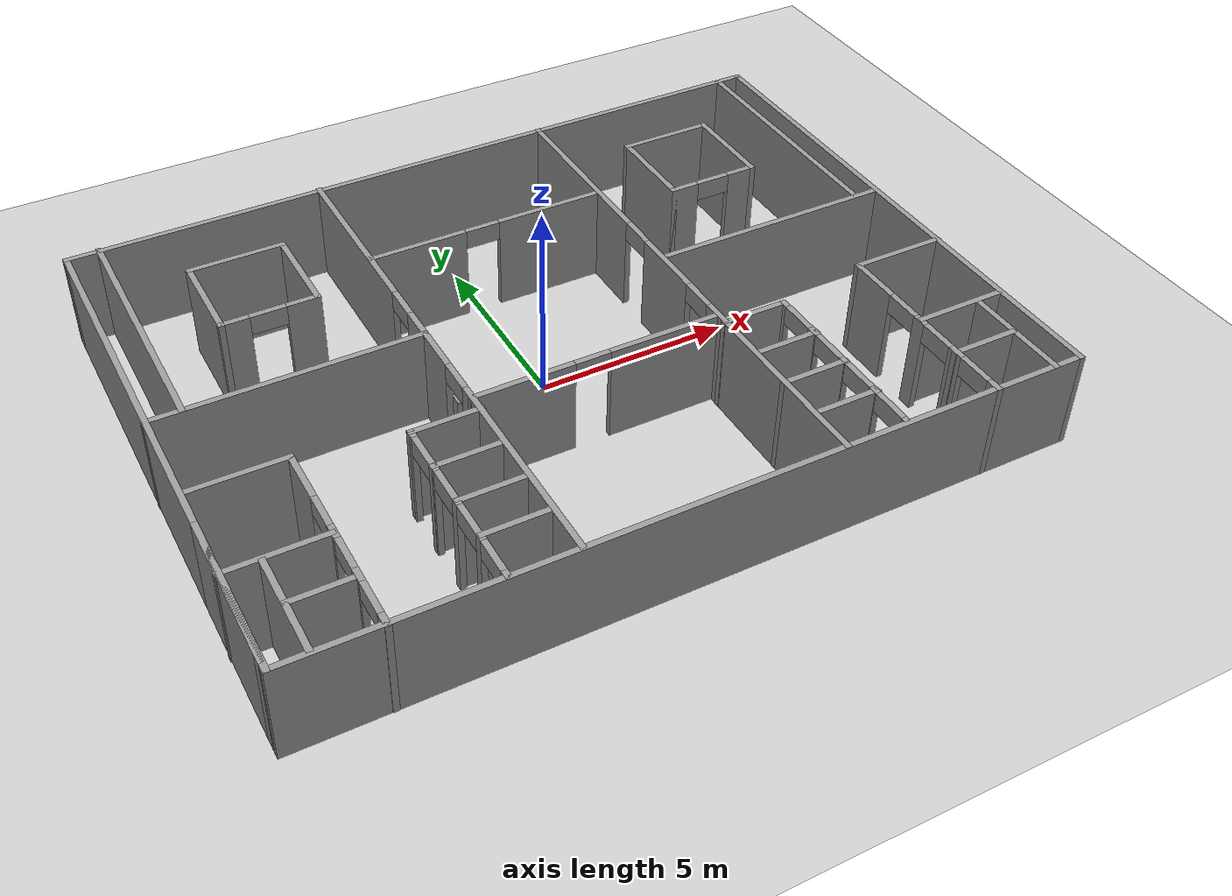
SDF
<sdf version="1.6">
 <world name="default">
  <light name="sun" type="directional">
   <pose>0 0 10 0 -0 0</pose>
   <diffuse>0.8 0.8 0.8 1</diffuse>
   <specular>0.1 0.1 0.1 1</specular>
   <attenuation>
    <range>1000</range>
    <constant>0.9</constant>
    <linear>0.01</linear>
    <quadratic>0.001</quadratic>
   </attenuation>
   <direction>-0.5 0.5 -1</direction>
  </light>
  <model name="ground_plane">
   <static>1</static>
   <link name="link">
    <collision name="collision">
     <geometry><plane><normal>0 0 1</normal><size>100 100</size></plane></geometry>
     <surface><friction><ode><mu>100</mu><mu2>50</mu2></ode></friction></surface>
    </collision>
    <visual name="visual">
     <cast_shadows>0</cast_shadows>
     <geometry><plane><normal>0 0 1</normal><size>100 100</size></plane></geometry>
     <material>
      <script><uri>file://media/materials/scripts/gazebo.material</uri><name>Gazebo/Grey</name></script>
     </material>
    </visual>
   </link>
  </model>
  <gravity>0 0 -9.8</gravity>
  <magnetic_field>6e-06 2.3e-05 -4.2e-05</magnetic_field>
  <atmosphere type="adiabatic"/>
  <physics name="default_physics" default="0" type="ode">
   <max_step_size>0.001</max_step_size>
   <real_time_factor>1</real_time_factor>
   <real_time_update_rate>1000</real_time_update_rate>
  </physics>
  <scene><ambient>0.4 0.4 0.4 1</ambient><background>0.7 0.7 0.7 1</background><shadows>1</shadows></scene>
  <spherical_coordinates>
   <surface_model>EARTH_WGS84</surface_model>
   <latitude_deg>0</latitude_deg>
   <longitude_deg>0</longitude_deg>
   <elevation>0</elevation>
   <heading_deg>0</heading_deg>
  </spherical_coordinates>
  <model name="Mezzanino">
   <pose>0.21214 -0.136261 0 0 -0 0</pose>
   <link name="Wall_103">
    <pose>3.22743 0.000523 0 0 0 -1.5708</pose>
    <visual name="Wall_103_Visual_0">
     <pose>-4.63496 0 1.25 0 -0 0</pose>
     <geometry><box><size>4.98009 0.15 2.5</size></box></geometry>
     <material>
      <script><uri>file://media/materials/scripts/gazebo.material</uri><name>Gazebo/Grey</name></script>
      <ambient>1 1 1 1</ambient>
     </material>
    </visual>
    <collision name="Wall_103_Collision_0">
     <geometry><box><size>4.98009 0.15 2.5</size></box></geometry>
     <pose>-4.63496 0 1.25 0 -0 0</pose>
    </collision>
    <visual name="Wall_103_Visual_1">
     <pose>-0.265455 0 1.25 0 -0 0</pose>
     <geometry><box><size>1.95891 0.15 2.5</size></box></geometry>
     <material>
      <script><uri>file://media/materials/scripts/gazebo.material</uri><name>Gazebo/Grey</name></script>
      <ambient>1 1 1 1</ambient>
     </material>
    </visual>
    <collision name="Wall_103_Collision_1">
     <geometry><box><size>1.95891 0.15 2.5</size></box></geometry>
     <pose>-0.265455 0 1.25 0 -0 0</pose>
    </collision>
    <visual name="Wall_103_Visual_2">
     <pose>4.3695 0 1.25 0 -0 0</pose>
     <geometry><box><size>5.511 0.15 2.5</size></box></geometry>
     <material>
      <script><uri>file://media/materials/scripts/gazebo.material</uri><name>Gazebo/Grey</name></script>
      <ambient>1 1 1 1</ambient>
     </material>
    </visual>
    <collision name="Wall_103_Collision_2">
     <geometry><box><size>5.511 0.15 2.5</size></box></geometry>
     <pose>4.3695 0 1.25 0 -0 0</pose>
    </collision>
    <visual name="Wall_103_Visual_3">
     <pose>-1.69491 0 2.25 0 -0 0</pose>
     <geometry><box><size>0.9 0.15 0.5</size></box></geometry>
     <material>
      <script><uri>file://media/materials/scripts/gazebo.material</uri><name>Gazebo/Grey</name></script>
      <ambient>1 1 1 1</ambient>
     </material>
    </visual>
    <collision name="Wall_103_Collision_3">
     <geometry><box><size>0.9 0.15 0.5</size></box></geometry>
     <pose>-1.69491 0 2.25 0 -0 0</pose>
    </collision>
    <visual name="Wall_103_Visual_4">
     <pose>1.164 0 2.25 0 -0 0</pose>
     <geometry><box><size>0.9 0.15 0.5</size></box></geometry>
     <material>
      <script><uri>file://media/materials/scripts/gazebo.material</uri><name>Gazebo/Grey</name></script>
      <ambient>1 1 1 1</ambient>
     </material>
    </visual>
    <collision name="Wall_103_Collision_4">
     <geometry><box><size>0.9 0.15 0.5</size></box></geometry>
     <pose>1.164 0 2.25 0 -0 0</pose>
    </collision>
   </link>
   <link name="Wall_105">
    <pose>-3.04356 0.031113 0 0 0 -1.5708</pose>
    <visual name="Wall_105_Visual_0">
     <pose>-4.65272 0 1.25 0 -0 0</pose>
     <geometry><box><size>4.94455 0.15 2.5</size></box></geometry>
     <material>
      <script><uri>file://media/materials/scripts/gazebo.material</uri><name>Gazebo/Grey</name></script>
      <ambient>1 1 1 1</ambient>
     </material>
    </visual>
    <collision name="Wall_105_Collision_0">
     <geometry><box><size>4.94455 0.15 2.5</size></box></geometry>
     <pose>-4.65272 0 1.25 0 -0 0</pose>
    </collision>
    <visual name="Wall_105_Visual_1">
     <pose>-0.242635 0 1.25 0 -0 0</pose>
     <geometry><box><size>2.07563 0.15 2.5</size></box></geometry>
     <material>
      <script><uri>file://media/materials/scripts/gazebo.material</uri><name>Gazebo/Grey</name></script>
      <ambient>1 1 1 1</ambient>
     </material>
    </visual>
    <collision name="Wall_105_Collision_1">
     <geometry><box><size>2.07563 0.15 2.5</size></box></geometry>
     <pose>-0.242635 0 1.25 0 -0 0</pose>
    </collision>
    <visual name="Wall_105_Visual_2">
     <pose>4.41009 0 1.25 0 -0 0</pose>
     <geometry><box><size>5.42982 0.15 2.5</size></box></geometry>
     <material>
      <script><uri>file://media/materials/scripts/gazebo.material</uri><name>Gazebo/Grey</name></script>
      <ambient>1 1 1 1</ambient>
     </material>
    </visual>
    <collision name="Wall_105_Collision_2">
     <geometry><box><size>5.42982 0.15 2.5</size></box></geometry>
     <pose>4.41009 0 1.25 0 -0 0</pose>
    </collision>
    <visual name="Wall_105_Visual_3">
     <pose>-1.73045 0 2.25 0 -0 0</pose>
     <geometry><box><size>0.9 0.15 0.5</size></box></geometry>
     <material>
      <script><uri>file://media/materials/scripts/gazebo.material</uri><name>Gazebo/Grey</name></script>
      <ambient>1 1 1 1</ambient>
     </material>
    </visual>
    <collision name="Wall_105_Collision_3">
     <geometry><box><size>0.9 0.15 0.5</size></box></geometry>
     <pose>-1.73045 0 2.25 0 -0 0</pose>
    </collision>
    <visual name="Wall_105_Visual_4">
     <pose>1.24518 0 2.25 0 -0 0</pose>
     <geometry><box><size>0.9 0.15 0.5</size></box></geometry>
     <material>
      <script><uri>file://media/materials/scripts/gazebo.material</uri><name>Gazebo/Grey</name></script>
      <ambient>1 1 1 1</ambient>
     </material>
    </visual>
    <collision name="Wall_105_Collision_4">
     <geometry><box><size>0.9 0.15 0.5</size></box></geometry>
     <pose>1.24518 0 2.25 0 -0 0</pose>
    </collision>
   </link>
   <link name="Wall_107">
    <pose>0.07436 -2.03402 0 0 -0 0</pose>
    <visual name="Wall_107_Visual_0">
     <pose>-1.9063 0 1.25 0 -0 0</pose>
     <geometry><box><size>2.5874 0.15 2.5</size></box></geometry>
     <material>
      <script><uri>file://media/materials/scripts/gazebo.material</uri><name>Gazebo/Grey</name></script>
      <ambient>1 1 1 1</ambient>
     </material>
    </visual>
    <collision name="Wall_107_Collision_0">
     <geometry><box><size>2.5874 0.15 2.5</size></box></geometry>
     <pose>-1.9063 0 1.25 0 -0 0</pose>
    </collision>
    <visual name="Wall_107_Visual_1">
     <pose>1.7437 0 1.25 0 -0 0</pose>
     <geometry><box><size>2.9126 0.15 2.5</size></box></geometry>
     <material>
      <script><uri>file://media/materials/scripts/gazebo.material</uri><name>Gazebo/Grey</name></script>
      <ambient>1 1 1 1</ambient>
     </material>
    </visual>
    <collision name="Wall_107_Collision_1">
     <geometry><box><size>2.9126 0.15 2.5</size></box></geometry>
     <pose>1.7437 0 1.25 0 -0 0</pose>
    </collision>
    <visual name="Wall_107_Visual_2">
     <pose>-0.1626 0 2.25 0 -0 0</pose>
     <geometry><box><size>0.9 0.15 0.5</size></box></geometry>
     <material>
      <script><uri>file://media/materials/scripts/gazebo.material</uri><name>Gazebo/Grey</name></script>
      <ambient>1 1 1 1</ambient>
     </material>
    </visual>
    <collision name="Wall_107_Collision_2">
     <geometry><box><size>0.9 0.15 0.5</size></box></geometry>
     <pose>-0.1626 0 2.25 0 -0 0</pose>
    </collision>
   </link>
   <link name="Wall_109">
    <pose>6.13871 2.88569 0 0 -0 0</pose>
    <visual name="Wall_109_Visual_0">
     <pose>-0.862212 0 1.25 0 -0 0</pose>
     <geometry><box><size>0.775575 0.15 2.5</size></box></geometry>
     <material>
      <script><uri>file://media/materials/scripts/gazebo.material</uri><name>Gazebo/Grey</name></script>
      <ambient>1 1 1 1</ambient>
     </material>
    </visual>
    <collision name="Wall_109_Collision_0">
     <geometry><box><size>0.775575 0.15 2.5</size></box></geometry>
     <pose>-0.862212 0 1.25 0 -0 0</pose>
    </collision>
    <visual name="Wall_109_Visual_1">
     <pose>0.837788 0 1.25 0 -0 0</pose>
     <geometry><box><size>0.824425 0.15 2.5</size></box></geometry>
     <material>
      <script><uri>file://media/materials/scripts/gazebo.material</uri><name>Gazebo/Grey</name></script>
      <ambient>1 1 1 1</ambient>
     </material>
    </visual>
    <collision name="Wall_109_Collision_1">
     <geometry><box><size>0.824425 0.15 2.5</size></box></geometry>
     <pose>0.837788 0 1.25 0 -0 0</pose>
    </collision>
    <visual name="Wall_109_Visual_2">
     <pose>-0.024425 0 2.25 0 -0 0</pose>
     <geometry><box><size>0.9 0.15 0.5</size></box></geometry>
     <material>
      <script><uri>file://media/materials/scripts/gazebo.material</uri><name>Gazebo/Grey</name></script>
      <ambient>1 1 1 1</ambient>
     </material>
    </visual>
    <collision name="Wall_109_Collision_2">
     <geometry><box><size>0.9 0.15 0.5</size></box></geometry>
     <pose>-0.024425 0 2.25 0 -0 0</pose>
    </collision>
   </link>
   <link name="Wall_11">
    <collision name="Wall_11_Collision">
     <geometry><box><size>14.0004 0.15 2.5</size></box></geometry>
     <pose>0 0 1.25 0 -0 0</pose>
    </collision>
    <visual name="Wall_11_Visual">
     <pose>0 0 1.25 0 -0 0</pose>
     <geometry><box><size>14.0004 0.15 2.5</size></box></geometry>
     <material>
      <script><uri>file://media/materials/scripts/gazebo.material</uri><name>Gazebo/Grey</name></script>
      <ambient>1 1 1 1</ambient>
     </material>
    </visual>
    <pose>-9.54461 0.110793 0 0 0 -1.57099</pose>
   </link>
   <link name="Wall_110">
    <collision name="Wall_110_Collision">
     <geometry><box><size>2.5 0.15 2.5</size></box></geometry>
     <pose>0 0 1.25 0 -0 0</pose>
    </collision>
    <visual name="Wall_110_Visual">
     <pose>0 0 1.25 0 -0 0</pose>
     <geometry><box><size>2.5 0.15 2.5</size></box></geometry>
     <material>
      <script><uri>file://media/materials/scripts/gazebo.material</uri><name>Gazebo/Grey</name></script>
      <ambient>1 1 1 1</ambient>
     </material>
    </visual>
    <pose>7.31371 4.06069 0 0 -0 1.5708</pose>
   </link>
   <link name="Wall_111">
    <collision name="Wall_111_Collision">
     <geometry><box><size>2.5 0.15 2.5</size></box></geometry>
     <pose>0 0 1.25 0 -0 0</pose>
    </collision>
    <visual name="Wall_111_Visual">
     <pose>0 0 1.25 0 -0 0</pose>
     <geometry><box><size>2.5 0.15 2.5</size></box></geometry>
     <material>
      <script><uri>file://media/materials/scripts/gazebo.material</uri><name>Gazebo/Grey</name></script>
      <ambient>1 1 1 1</ambient>
     </material>
    </visual>
    <pose>6.13871 5.23569 0 0 -0 3.14159</pose>
   </link>
   <link name="Wall_112">
    <collision name="Wall_112_Collision">
     <geometry><box><size>2.5 0.15 2.5</size></box></geometry>
     <pose>0 0 1.25 0 -0 0</pose>
    </collision>
    <visual name="Wall_112_Visual">
     <pose>0 0 1.25 0 -0 0</pose>
     <geometry><box><size>2.5 0.15 2.5</size></box></geometry>
     <material>
      <script><uri>file://media/materials/scripts/gazebo.material</uri><name>Gazebo/Grey</name></script>
      <ambient>1 1 1 1</ambient>
     </material>
    </visual>
    <pose>4.96371 4.06069 0 0 0 -1.5708</pose>
   </link>
   <link name="Wall_12">
    <collision name="Wall_12_Collision">
     <geometry><box><size>4 0.15 2.5</size></box></geometry>
     <pose>0 0 1.25 0 -0 0</pose>
    </collision>
    <visual name="Wall_12_Visual">
     <pose>0 0 1.25 0 -0 0</pose>
     <geometry><box><size>4 0.15 2.5</size></box></geometry>
     <material>
      <script><uri>file://media/materials/scripts/gazebo.material</uri><name>Gazebo/Grey</name></script>
      <ambient>1 1 1 1</ambient>
     </material>
    </visual>
    <pose>-9.54592 -4.88941 0 0 -0 1.5708</pose>
   </link>
   <link name="Wall_121">
    <pose>0.10081 3.69241 0 0 -0 0</pose>
    <visual name="Wall_121_Visual_0">
     <pose>-1.91291 0 1.25 0 -0 0</pose>
     <geometry><box><size>2.57417 0.15 2.5</size></box></geometry>
     <material>
      <script><uri>file://media/materials/scripts/gazebo.material</uri><name>Gazebo/Grey</name></script>
      <ambient>1 1 1 1</ambient>
     </material>
    </visual>
    <collision name="Wall_121_Collision_0">
     <geometry><box><size>2.57417 0.15 2.5</size></box></geometry>
     <pose>-1.91291 0 1.25 0 -0 0</pose>
    </collision>
    <visual name="Wall_121_Visual_1">
     <pose>1.73709 0 1.25 0 -0 0</pose>
     <geometry><box><size>2.92583 0.15 2.5</size></box></geometry>
     <material>
      <script><uri>file://media/materials/scripts/gazebo.material</uri><name>Gazebo/Grey</name></script>
      <ambient>1 1 1 1</ambient>
     </material>
    </visual>
    <collision name="Wall_121_Collision_1">
     <geometry><box><size>2.92583 0.15 2.5</size></box></geometry>
     <pose>1.73709 0 1.25 0 -0 0</pose>
    </collision>
    <visual name="Wall_121_Visual_2">
     <pose>-0.175825 0 2.25 0 -0 0</pose>
     <geometry><box><size>0.9 0.15 0.5</size></box></geometry>
     <material>
      <script><uri>file://media/materials/scripts/gazebo.material</uri><name>Gazebo/Grey</name></script>
      <ambient>1 1 1 1</ambient>
     </material>
    </visual>
    <collision name="Wall_121_Collision_2">
     <geometry><box><size>0.9 0.15 0.5</size></box></geometry>
     <pose>-0.175825 0 2.25 0 -0 0</pose>
    </collision>
   </link>
   <link name="Wall_123">
    <collision name="Wall_123_Collision">
     <geometry><box><size>6.65 0.15 2.5</size></box></geometry>
     <pose>0 0 1.25 0 -0 0</pose>
    </collision>
    <visual name="Wall_123_Visual">
     <pose>0 0 1.25 0 -0 0</pose>
     <geometry><box><size>6.65 0.15 2.5</size></box></geometry>
     <material>
      <script><uri>file://media/materials/scripts/gazebo.material</uri><name>Gazebo/Grey</name></script>
      <ambient>1 1 1 1</ambient>
     </material>
    </visual>
    <pose>-6.30731 0.465994 0 0 -0 0</pose>
   </link>
   <link name="Wall_127">
    <collision name="Wall_127_Collision">
     <geometry><box><size>2.5 0.15 2.5</size></box></geometry>
     <pose>0 0 1.25 0 -0 0</pose>
    </collision>
    <visual name="Wall_127_Visual">
     <pose>0 0 1.25 0 -0 0</pose>
     <geometry><box><size>2.5 0.15 2.5</size></box></geometry>
     <material>
      <script><uri>file://media/materials/scripts/gazebo.material</uri><name>Gazebo/Grey</name></script>
      <ambient>1 1 1 1</ambient>
     </material>
    </visual>
    <pose>-8.35589 -1.98111 0 0 -0 0</pose>
   </link>
   <link name="Wall_128">
    <pose>-7.18089 -4.53111 0 0 0 -1.5708</pose>
    <visual name="Wall_128_Visual_0">
     <pose>-1.92643 0 1.25 0 -0 0</pose>
     <geometry><box><size>1.39715 0.15 2.5</size></box></geometry>
     <material>
      <script><uri>file://media/materials/scripts/gazebo.material</uri><name>Gazebo/Grey</name></script>
      <ambient>1 1 1 1</ambient>
     </material>
    </visual>
    <collision name="Wall_128_Collision_0">
     <geometry><box><size>1.39715 0.15 2.5</size></box></geometry>
     <pose>-1.92643 0 1.25 0 -0 0</pose>
    </collision>
    <visual name="Wall_128_Visual_1">
     <pose>-0.129825 0 1.25 0 -0 0</pose>
     <geometry><box><size>0.39605 0.15 2.5</size></box></geometry>
     <material>
      <script><uri>file://media/materials/scripts/gazebo.material</uri><name>Gazebo/Grey</name></script>
      <ambient>1 1 1 1</ambient>
     </material>
    </visual>
    <collision name="Wall_128_Collision_1">
     <geometry><box><size>0.39605 0.15 2.5</size></box></geometry>
     <pose>-0.129825 0 1.25 0 -0 0</pose>
    </collision>
    <visual name="Wall_128_Visual_2">
     <pose>1.15961 0 1.25 0 -0 0</pose>
     <geometry><box><size>0.382825 0.15 2.5</size></box></geometry>
     <material>
      <script><uri>file://media/materials/scripts/gazebo.material</uri><name>Gazebo/Grey</name></script>
      <ambient>1 1 1 1</ambient>
     </material>
    </visual>
    <collision name="Wall_128_Collision_2">
     <geometry><box><size>0.382825 0.15 2.5</size></box></geometry>
     <pose>1.15961 0 1.25 0 -0 0</pose>
    </collision>
    <visual name="Wall_128_Visual_3">
     <pose>2.43801 0 1.25 0 -0 0</pose>
     <geometry><box><size>0.373975 0.15 2.5</size></box></geometry>
     <material>
      <script><uri>file://media/materials/scripts/gazebo.material</uri><name>Gazebo/Grey</name></script>
      <ambient>1 1 1 1</ambient>
     </material>
    </visual>
    <collision name="Wall_128_Collision_3">
     <geometry><box><size>0.373975 0.15 2.5</size></box></geometry>
     <pose>2.43801 0 1.25 0 -0 0</pose>
    </collision>
    <visual name="Wall_128_Visual_4">
     <pose>-0.77785 0 2.25 0 -0 0</pose>
     <geometry><box><size>0.9 0.15 0.5</size></box></geometry>
     <material>
      <script><uri>file://media/materials/scripts/gazebo.material</uri><name>Gazebo/Grey</name></script>
      <ambient>1 1 1 1</ambient>
     </material>
    </visual>
    <collision name="Wall_128_Collision_4">
     <geometry><box><size>0.9 0.15 0.5</size></box></geometry>
     <pose>-0.77785 0 2.25 0 -0 0</pose>
    </collision>
    <visual name="Wall_128_Visual_5">
     <pose>0.5182 0 2.25 0 -0 0</pose>
     <geometry><box><size>0.9 0.15 0.5</size></box></geometry>
     <material>
      <script><uri>file://media/materials/scripts/gazebo.material</uri><name>Gazebo/Grey</name></script>
      <ambient>1 1 1 1</ambient>
     </material>
    </visual>
    <collision name="Wall_128_Collision_5">
     <geometry><box><size>0.9 0.15 0.5</size></box></geometry>
     <pose>0.5182 0 2.25 0 -0 0</pose>
    </collision>
    <visual name="Wall_128_Visual_6">
     <pose>1.80103 0 2.25 0 -0 0</pose>
     <geometry><box><size>0.9 0.15 0.5</size></box></geometry>
     <material>
      <script><uri>file://media/materials/scripts/gazebo.material</uri><name>Gazebo/Grey</name></script>
      <ambient>1 1 1 1</ambient>
     </material>
    </visual>
    <collision name="Wall_128_Collision_6">
     <geometry><box><size>0.9 0.15 0.5</size></box></geometry>
     <pose>1.80103 0 2.25 0 -0 0</pose>
    </collision>
   </link>
   <link name="Wall_130">
    <collision name="Wall_130_Collision">
     <geometry><box><size>2.5 0.15 2.5</size></box></geometry>
     <pose>0 0 1.25 0 -0 0</pose>
    </collision>
    <visual name="Wall_130_Visual">
     <pose>0 0 1.25 0 -0 0</pose>
     <geometry><box><size>2.5 0.15 2.5</size></box></geometry>
     <material>
      <script><uri>file://media/materials/scripts/gazebo.material</uri><name>Gazebo/Grey</name></script>
      <ambient>1 1 1 1</ambient>
     </material>
    </visual>
    <pose>-8.39556 -4.42774 0 0 -0 0</pose>
   </link>
   <link name="Wall_132">
    <collision name="Wall_132_Collision">
     <geometry><box><size>2.65 0.15 2.5</size></box></geometry>
     <pose>0 0 1.25 0 -0 0</pose>
    </collision>
    <visual name="Wall_132_Visual">
     <pose>0 0 1.25 0 -0 0</pose>
     <geometry><box><size>2.65 0.15 2.5</size></box></geometry>
     <material>
      <script><uri>file://media/materials/scripts/gazebo.material</uri><name>Gazebo/Grey</name></script>
      <ambient>1 1 1 1</ambient>
     </material>
    </visual>
    <pose>-8.68449 -5.73064 0 0 0 -1.5708</pose>
   </link>
   <link name="Wall_134">
    <collision name="Wall_134_Collision">
     <geometry><box><size>1.5 0.15 2.5</size></box></geometry>
     <pose>0 0 1.25 0 -0 0</pose>
    </collision>
    <visual name="Wall_134_Visual">
     <pose>0 0 1.25 0 -0 0</pose>
     <geometry><box><size>1.5 0.15 2.5</size></box></geometry>
     <material>
      <script><uri>file://media/materials/scripts/gazebo.material</uri><name>Gazebo/Grey</name></script>
      <ambient>1 1 1 1</ambient>
     </material>
    </visual>
    <pose>-7.99627 -5.72379 0 0 -0 0</pose>
   </link>
   <link name="Wall_136">
    <collision name="Wall_136_Collision">
     <geometry><box><size>1.8 0.15 2.5</size></box></geometry>
     <pose>0 0 1.25 0 -0 0</pose>
    </collision>
    <visual name="Wall_136_Visual">
     <pose>0 0 1.25 0 -0 0</pose>
     <geometry><box><size>1.8 0.15 2.5</size></box></geometry>
     <material>
      <script><uri>file://media/materials/scripts/gazebo.material</uri><name>Gazebo/Grey</name></script>
      <ambient>1 1 1 1</ambient>
     </material>
    </visual>
    <pose>-3.84919 -2.44399 0 0 -0 3.14159</pose>
   </link>
   <link name="Wall_137">
    <pose>-4.67419 -4.74399 0 0 0 -1.5708</pose>
    <visual name="Wall_137_Visual_0">
     <pose>-2.2451 0 1.25 0 -0 0</pose>
     <geometry><box><size>0.2598 0.15 2.5</size></box></geometry>
     <material>
      <script><uri>file://media/materials/scripts/gazebo.material</uri><name>Gazebo/Grey</name></script>
      <ambient>1 1 1 1</ambient>
     </material>
    </visual>
    <collision name="Wall_137_Collision_0">
     <geometry><box><size>0.2598 0.15 2.5</size></box></geometry>
     <pose>-2.2451 0 1.25 0 -0 0</pose>
    </collision>
    <visual name="Wall_137_Visual_1">
     <pose>-1.09652 0 1.25 0 -0 0</pose>
     <geometry><box><size>0.23735 0.15 2.5</size></box></geometry>
     <material>
      <script><uri>file://media/materials/scripts/gazebo.material</uri><name>Gazebo/Grey</name></script>
      <ambient>1 1 1 1</ambient>
     </material>
    </visual>
    <collision name="Wall_137_Collision_1">
     <geometry><box><size>0.23735 0.15 2.5</size></box></geometry>
     <pose>-1.09652 0 1.25 0 -0 0</pose>
    </collision>
    <visual name="Wall_137_Visual_2">
     <pose>0.0276 0 1.25 0 -0 0</pose>
     <geometry><box><size>0.2109 0.15 2.5</size></box></geometry>
     <material>
      <script><uri>file://media/materials/scripts/gazebo.material</uri><name>Gazebo/Grey</name></script>
      <ambient>1 1 1 1</ambient>
     </material>
    </visual>
    <collision name="Wall_137_Collision_2">
     <geometry><box><size>0.2109 0.15 2.5</size></box></geometry>
     <pose>0.0276 0 1.25 0 -0 0</pose>
    </collision>
    <visual name="Wall_137_Visual_3">
     <pose>1.13589 0 1.25 0 -0 0</pose>
     <geometry><box><size>0.205672 0.15 2.5</size></box></geometry>
     <material>
      <script><uri>file://media/materials/scripts/gazebo.material</uri><name>Gazebo/Grey</name></script>
      <ambient>1 1 1 1</ambient>
     </material>
    </visual>
    <collision name="Wall_137_Collision_3">
     <geometry><box><size>0.205672 0.15 2.5</size></box></geometry>
     <pose>1.13589 0 1.25 0 -0 0</pose>
    </collision>
    <visual name="Wall_137_Visual_4">
     <pose>2.25686 0 1.25 0 -0 0</pose>
     <geometry><box><size>0.236278 0.15 2.5</size></box></geometry>
     <material>
      <script><uri>file://media/materials/scripts/gazebo.material</uri><name>Gazebo/Grey</name></script>
      <ambient>1 1 1 1</ambient>
     </material>
    </visual>
    <collision name="Wall_137_Collision_4">
     <geometry><box><size>0.236278 0.15 2.5</size></box></geometry>
     <pose>2.25686 0 1.25 0 -0 0</pose>
    </collision>
    <visual name="Wall_137_Visual_5">
     <pose>-1.6652 0 2.25 0 -0 0</pose>
     <geometry><box><size>0.9 0.15 0.5</size></box></geometry>
     <material>
      <script><uri>file://media/materials/scripts/gazebo.material</uri><name>Gazebo/Grey</name></script>
      <ambient>1 1 1 1</ambient>
     </material>
    </visual>
    <collision name="Wall_137_Collision_5">
     <geometry><box><size>0.9 0.15 0.5</size></box></geometry>
     <pose>-1.6652 0 2.25 0 -0 0</pose>
    </collision>
    <visual name="Wall_137_Visual_6">
     <pose>-0.52785 0 2.25 0 -0 0</pose>
     <geometry><box><size>0.9 0.15 0.5</size></box></geometry>
     <material>
      <script><uri>file://media/materials/scripts/gazebo.material</uri><name>Gazebo/Grey</name></script>
      <ambient>1 1 1 1</ambient>
     </material>
    </visual>
    <collision name="Wall_137_Collision_6">
     <geometry><box><size>0.9 0.15 0.5</size></box></geometry>
     <pose>-0.52785 0 2.25 0 -0 0</pose>
    </collision>
    <visual name="Wall_137_Visual_7">
     <pose>0.58305 0 2.25 0 -0 0</pose>
     <geometry><box><size>0.9 0.15 0.5</size></box></geometry>
     <material>
      <script><uri>file://media/materials/scripts/gazebo.material</uri><name>Gazebo/Grey</name></script>
      <ambient>1 1 1 1</ambient>
     </material>
    </visual>
    <collision name="Wall_137_Collision_7">
     <geometry><box><size>0.9 0.15 0.5</size></box></geometry>
     <pose>0.58305 0 2.25 0 -0 0</pose>
    </collision>
    <visual name="Wall_137_Visual_8">
     <pose>1.68872 0 2.25 0 -0 0</pose>
     <geometry><box><size>0.9 0.15 0.5</size></box></geometry>
     <material>
      <script><uri>file://media/materials/scripts/gazebo.material</uri><name>Gazebo/Grey</name></script>
      <ambient>1 1 1 1</ambient>
     </material>
    </visual>
    <collision name="Wall_137_Collision_8">
     <geometry><box><size>0.9 0.15 0.5</size></box></geometry>
     <pose>1.68872 0 2.25 0 -0 0</pose>
    </collision>
   </link>
   <link name="Wall_139">
    <collision name="Wall_139_Collision">
     <geometry><box><size>1.75 0.15 2.5</size></box></geometry>
     <pose>0 0 1.25 0 -0 0</pose>
    </collision>
    <visual name="Wall_139_Visual">
     <pose>0 0 1.25 0 -0 0</pose>
     <geometry><box><size>1.75 0.15 2.5</size></box></geometry>
     <material>
      <script><uri>file://media/materials/scripts/gazebo.material</uri><name>Gazebo/Grey</name></script>
      <ambient>1 1 1 1</ambient>
     </material>
    </visual>
    <pose>-3.88038 -3.61847 0 0 -0 0</pose>
   </link>
   <link name="Wall_14">
    <collision name="Wall_14_Collision">
     <geometry><box><size>14.25 0.15 2.5</size></box></geometry>
     <pose>0 0 1.25 0 -0 0</pose>
    </collision>
    <visual name="Wall_14_Visual">
     <pose>0 0 1.25 0 -0 0</pose>
     <geometry><box><size>14.25 0.15 2.5</size></box></geometry>
     <material>
      <script><uri>file://media/materials/scripts/gazebo.material</uri><name>Gazebo/Grey</name></script>
      <ambient>1 1 1 1</ambient>
     </material>
    </visual>
    <pose>-9.54331 -0.014005 0 0 -0 1.5708</pose>
   </link>
   <link name="Wall_141">
    <collision name="Wall_141_Collision">
     <geometry><box><size>1.75 0.15 2.5</size></box></geometry>
     <pose>0 0 1.25 0 -0 0</pose>
    </collision>
    <visual name="Wall_141_Visual">
     <pose>0 0 1.25 0 -0 0</pose>
     <geometry><box><size>1.75 0.15 2.5</size></box></geometry>
     <material>
      <script><uri>file://media/materials/scripts/gazebo.material</uri><name>Gazebo/Grey</name></script>
      <ambient>1 1 1 1</ambient>
     </material>
    </visual>
    <pose>-3.85738 -4.75697 0 0 -0 0</pose>
   </link>
   <link name="Wall_143">
    <collision name="Wall_143_Collision">
     <geometry><box><size>1.75 0.15 2.5</size></box></geometry>
     <pose>0 0 1.25 0 -0 0</pose>
    </collision>
    <visual name="Wall_143_Visual">
     <pose>0 0 1.25 0 -0 0</pose>
     <geometry><box><size>1.75 0.15 2.5</size></box></geometry>
     <material>
      <script><uri>file://media/materials/scripts/gazebo.material</uri><name>Gazebo/Grey</name></script>
      <ambient>1 1 1 1</ambient>
     </material>
    </visual>
    <pose>-3.84588 -5.83797 0 0 -0 0</pose>
   </link>
   <link name="Wall_146">
    <collision name="Wall_146_Collision">
     <geometry><box><size>6.4 0.15 2.5</size></box></geometry>
     <pose>0 0 1.25 0 -0 0</pose>
    </collision>
    <visual name="Wall_146_Visual">
     <pose>0 0 1.25 0 -0 0</pose>
     <geometry><box><size>6.4 0.15 2.5</size></box></geometry>
     <material>
      <script><uri>file://media/materials/scripts/gazebo.material</uri><name>Gazebo/Grey</name></script>
      <ambient>1 1 1 1</ambient>
     </material>
    </visual>
    <pose>6.35352 0.497887 0 0 -0 0</pose>
   </link>
   <link name="Wall_148">
    <collision name="Wall_148_Collision">
     <geometry><box><size>6.6 0.15 2.5</size></box></geometry>
     <pose>0 0 1.25 0 -0 0</pose>
    </collision>
    <visual name="Wall_148_Visual">
     <pose>0 0 1.25 0 -0 0</pose>
     <geometry><box><size>6.6 0.15 2.5</size></box></geometry>
     <material>
      <script><uri>file://media/materials/scripts/gazebo.material</uri><name>Gazebo/Grey</name></script>
      <ambient>1 1 1 1</ambient>
     </material>
    </visual>
    <pose>8.91659 3.79744 0 0 0 -1.5708</pose>
   </link>
   <link name="Wall_15">
    <collision name="Wall_15_Collision">
     <geometry><box><size>19.2474 0.15 2.5</size></box></geometry>
     <pose>0 0 1.25 0 -0 0</pose>
    </collision>
    <visual name="Wall_15_Visual">
     <pose>0 0 1.25 0 -0 0</pose>
     <geometry><box><size>19.2474 0.15 2.5</size></box></geometry>
     <material>
      <script><uri>file://media/materials/scripts/gazebo.material</uri><name>Gazebo/Grey</name></script>
      <ambient>1 1 1 1</ambient>
     </material>
    </visual>
    <pose>0.00519 7.03599 0 0 -0 0</pose>
   </link>
   <link name="Wall_150">
    <collision name="Wall_150_Collision">
     <geometry><box><size>1.75 0.15 2.5</size></box></geometry>
     <pose>0 0 1.25 0 -0 0</pose>
    </collision>
    <visual name="Wall_150_Visual">
     <pose>0 0 1.25 0 -0 0</pose>
     <geometry><box><size>1.75 0.15 2.5</size></box></geometry>
     <material>
      <script><uri>file://media/materials/scripts/gazebo.material</uri><name>Gazebo/Grey</name></script>
      <ambient>1 1 1 1</ambient>
     </material>
    </visual>
    <pose>4.01331 -2.34615 0 0 -0 0</pose>
   </link>
   <link name="Wall_151">
    <pose>4.81331 -4.64615 0 0 0 -1.5708</pose>
    <visual name="Wall_151_Visual_0">
     <pose>-2.25072 0 1.25 0 -0 0</pose>
     <geometry><box><size>0.248559 0.15 2.5</size></box></geometry>
     <material>
      <script><uri>file://media/materials/scripts/gazebo.material</uri><name>Gazebo/Grey</name></script>
      <ambient>1 1 1 1</ambient>
     </material>
    </visual>
    <collision name="Wall_151_Collision_0">
     <geometry><box><size>0.248559 0.15 2.5</size></box></geometry>
     <pose>-2.25072 0 1.25 0 -0 0</pose>
    </collision>
    <visual name="Wall_151_Visual_1">
     <pose>-1.0757 0 1.25 0 -0 0</pose>
     <geometry><box><size>0.301491 0.15 2.5</size></box></geometry>
     <material>
      <script><uri>file://media/materials/scripts/gazebo.material</uri><name>Gazebo/Grey</name></script>
      <ambient>1 1 1 1</ambient>
     </material>
    </visual>
    <collision name="Wall_151_Collision_1">
     <geometry><box><size>0.301491 0.15 2.5</size></box></geometry>
     <pose>-1.0757 0 1.25 0 -0 0</pose>
    </collision>
    <visual name="Wall_151_Visual_2">
     <pose>0.087774 0 1.25 0 -0 0</pose>
     <geometry><box><size>0.225447 0.15 2.5</size></box></geometry>
     <material>
      <script><uri>file://media/materials/scripts/gazebo.material</uri><name>Gazebo/Grey</name></script>
      <ambient>1 1 1 1</ambient>
     </material>
    </visual>
    <collision name="Wall_151_Collision_2">
     <geometry><box><size>0.225447 0.15 2.5</size></box></geometry>
     <pose>0.087774 0 1.25 0 -0 0</pose>
    </collision>
    <visual name="Wall_151_Visual_3">
     <pose>1.22083 0 1.25 0 -0 0</pose>
     <geometry><box><size>0.240656 0.15 2.5</size></box></geometry>
     <material>
      <script><uri>file://media/materials/scripts/gazebo.material</uri><name>Gazebo/Grey</name></script>
      <ambient>1 1 1 1</ambient>
     </material>
    </visual>
    <collision name="Wall_151_Collision_3">
     <geometry><box><size>0.240656 0.15 2.5</size></box></geometry>
     <pose>1.22083 0 1.25 0 -0 0</pose>
    </collision>
    <visual name="Wall_151_Visual_4">
     <pose>2.30808 0 1.25 0 -0 0</pose>
     <geometry><box><size>0.133846 0.15 2.5</size></box></geometry>
     <material>
      <script><uri>file://media/materials/scripts/gazebo.material</uri><name>Gazebo/Grey</name></script>
      <ambient>1 1 1 1</ambient>
     </material>
    </visual>
    <collision name="Wall_151_Collision_4">
     <geometry><box><size>0.133846 0.15 2.5</size></box></geometry>
     <pose>2.30808 0 1.25 0 -0 0</pose>
    </collision>
    <visual name="Wall_151_Visual_5">
     <pose>-1.67644 0 2.25 0 -0 0</pose>
     <geometry><box><size>0.9 0.15 0.5</size></box></geometry>
     <material>
      <script><uri>file://media/materials/scripts/gazebo.material</uri><name>Gazebo/Grey</name></script>
      <ambient>1 1 1 1</ambient>
     </material>
    </visual>
    <collision name="Wall_151_Collision_5">
     <geometry><box><size>0.9 0.15 0.5</size></box></geometry>
     <pose>-1.67644 0 2.25 0 -0 0</pose>
    </collision>
    <visual name="Wall_151_Visual_6">
     <pose>-0.47495 0 2.25 0 -0 0</pose>
     <geometry><box><size>0.9 0.15 0.5</size></box></geometry>
     <material>
      <script><uri>file://media/materials/scripts/gazebo.material</uri><name>Gazebo/Grey</name></script>
      <ambient>1 1 1 1</ambient>
     </material>
    </visual>
    <collision name="Wall_151_Collision_6">
     <geometry><box><size>0.9 0.15 0.5</size></box></geometry>
     <pose>-0.47495 0 2.25 0 -0 0</pose>
    </collision>
    <visual name="Wall_151_Visual_7">
     <pose>0.650497 0 2.25 0 -0 0</pose>
     <geometry><box><size>0.9 0.15 0.5</size></box></geometry>
     <material>
      <script><uri>file://media/materials/scripts/gazebo.material</uri><name>Gazebo/Grey</name></script>
      <ambient>1 1 1 1</ambient>
     </material>
    </visual>
    <collision name="Wall_151_Collision_7">
     <geometry><box><size>0.9 0.15 0.5</size></box></geometry>
     <pose>0.650497 0 2.25 0 -0 0</pose>
    </collision>
    <visual name="Wall_151_Visual_8">
     <pose>1.79115 0 2.25 0 -0 0</pose>
     <geometry><box><size>0.9 0.15 0.5</size></box></geometry>
     <material>
      <script><uri>file://media/materials/scripts/gazebo.material</uri><name>Gazebo/Grey</name></script>
      <ambient>1 1 1 1</ambient>
     </material>
    </visual>
    <collision name="Wall_151_Collision_8">
     <geometry><box><size>0.9 0.15 0.5</size></box></geometry>
     <pose>1.79115 0 2.25 0 -0 0</pose>
    </collision>
   </link>
   <link name="Wall_153">
    <collision name="Wall_153_Collision">
     <geometry><box><size>1.75 0.15 2.5</size></box></geometry>
     <pose>0 0 1.25 0 -0 0</pose>
    </collision>
    <visual name="Wall_153_Visual">
     <pose>0 0 1.25 0 -0 0</pose>
     <geometry><box><size>1.75 0.15 2.5</size></box></geometry>
     <material>
      <script><uri>file://media/materials/scripts/gazebo.material</uri><name>Gazebo/Grey</name></script>
      <ambient>1 1 1 1</ambient>
     </material>
    </visual>
    <pose>4.04064 -3.60847 0 0 -0 3.14159</pose>
   </link>
   <link name="Wall_155">
    <collision name="Wall_155_Collision">
     <geometry><box><size>1.75 0.15 2.5</size></box></geometry>
     <pose>0 0 1.25 0 -0 0</pose>
    </collision>
    <visual name="Wall_155_Visual">
     <pose>0 0 1.25 0 -0 0</pose>
     <geometry><box><size>1.75 0.15 2.5</size></box></geometry>
     <material>
      <script><uri>file://media/materials/scripts/gazebo.material</uri><name>Gazebo/Grey</name></script>
      <ambient>1 1 1 1</ambient>
     </material>
    </visual>
    <pose>4.02543 -4.74913 0 0 -0 3.14159</pose>
   </link>
   <link name="Wall_157">
    <collision name="Wall_157_Collision">
     <geometry><box><size>1.75 0.15 2.5</size></box></geometry>
     <pose>0 0 1.25 0 -0 0</pose>
    </collision>
    <visual name="Wall_157_Visual">
     <pose>0 0 1.25 0 -0 0</pose>
     <geometry><box><size>1.75 0.15 2.5</size></box></geometry>
     <material>
      <script><uri>file://media/materials/scripts/gazebo.material</uri><name>Gazebo/Grey</name></script>
      <ambient>1 1 1 1</ambient>
     </material>
    </visual>
    <pose>4.04064 -5.88979 0 0 -0 3.14159</pose>
   </link>
   <link name="Wall_159">
    <collision name="Wall_159_Collision">
     <geometry><box><size>2.5 0.15 2.5</size></box></geometry>
     <pose>0 0 1.25 0 -0 0</pose>
    </collision>
    <visual name="Wall_159_Visual">
     <pose>0 0 1.25 0 -0 0</pose>
     <geometry><box><size>2.5 0.15 2.5</size></box></geometry>
     <material>
      <script><uri>file://media/materials/scripts/gazebo.material</uri><name>Gazebo/Grey</name></script>
      <ambient>1 1 1 1</ambient>
     </material>
    </visual>
    <pose>8.39556 -1.96593 0 0 -0 3.14159</pose>
   </link>
   <link name="Wall_16">
    <collision name="Wall_16_Collision">
     <geometry><box><size>14.25 0.15 2.5</size></box></geometry>
     <pose>0 0 1.25 0 -0 0</pose>
    </collision>
    <visual name="Wall_16_Visual">
     <pose>0 0 1.25 0 -0 0</pose>
     <geometry><box><size>14.25 0.15 2.5</size></box></geometry>
     <material>
      <script><uri>file://media/materials/scripts/gazebo.material</uri><name>Gazebo/Grey</name></script>
      <ambient>1 1 1 1</ambient>
     </material>
    </visual>
    <pose>9.55369 -0.014005 0 0 0 -1.5708</pose>
   </link>
   <link name="Wall_160">
    <pose>7.22056 -4.51593 0 0 0 -1.5708</pose>
    <visual name="Wall_160_Visual_0">
     <pose>-1.93039 0 1.25 0 -0 0</pose>
     <geometry><box><size>1.38922 0.15 2.5</size></box></geometry>
     <material>
      <script><uri>file://media/materials/scripts/gazebo.material</uri><name>Gazebo/Grey</name></script>
      <ambient>1 1 1 1</ambient>
     </material>
    </visual>
    <collision name="Wall_160_Collision_0">
     <geometry><box><size>1.38922 0.15 2.5</size></box></geometry>
     <pose>-1.93039 0 1.25 0 -0 0</pose>
    </collision>
    <visual name="Wall_160_Visual_1">
     <pose>-0.150974 0 1.25 0 -0 0</pose>
     <geometry><box><size>0.369622 0.15 2.5</size></box></geometry>
     <material>
      <script><uri>file://media/materials/scripts/gazebo.material</uri><name>Gazebo/Grey</name></script>
      <ambient>1 1 1 1</ambient>
     </material>
    </visual>
    <collision name="Wall_160_Collision_1">
     <geometry><box><size>0.369622 0.15 2.5</size></box></geometry>
     <pose>-0.150974 0 1.25 0 -0 0</pose>
    </collision>
    <visual name="Wall_160_Visual_2">
     <pose>1.14509 0 1.25 0 -0 0</pose>
     <geometry><box><size>0.4225 0.15 2.5</size></box></geometry>
     <material>
      <script><uri>file://media/materials/scripts/gazebo.material</uri><name>Gazebo/Grey</name></script>
      <ambient>1 1 1 1</ambient>
     </material>
    </visual>
    <collision name="Wall_160_Collision_2">
     <geometry><box><size>0.4225 0.15 2.5</size></box></geometry>
     <pose>1.14509 0 1.25 0 -0 0</pose>
    </collision>
    <visual name="Wall_160_Visual_3">
     <pose>2.44067 0 1.25 0 -0 0</pose>
     <geometry><box><size>0.368663 0.15 2.5</size></box></geometry>
     <material>
      <script><uri>file://media/materials/scripts/gazebo.material</uri><name>Gazebo/Grey</name></script>
      <ambient>1 1 1 1</ambient>
     </material>
    </visual>
    <collision name="Wall_160_Collision_3">
     <geometry><box><size>0.368663 0.15 2.5</size></box></geometry>
     <pose>2.44067 0 1.25 0 -0 0</pose>
    </collision>
    <visual name="Wall_160_Visual_4">
     <pose>-0.785785 0 2.25 0 -0 0</pose>
     <geometry><box><size>0.9 0.15 0.5</size></box></geometry>
     <material>
      <script><uri>file://media/materials/scripts/gazebo.material</uri><name>Gazebo/Grey</name></script>
      <ambient>1 1 1 1</ambient>
     </material>
    </visual>
    <collision name="Wall_160_Collision_4">
     <geometry><box><size>0.9 0.15 0.5</size></box></geometry>
     <pose>-0.785785 0 2.25 0 -0 0</pose>
    </collision>
    <visual name="Wall_160_Visual_5">
     <pose>0.483837 0 2.25 0 -0 0</pose>
     <geometry><box><size>0.9 0.15 0.5</size></box></geometry>
     <material>
      <script><uri>file://media/materials/scripts/gazebo.material</uri><name>Gazebo/Grey</name></script>
      <ambient>1 1 1 1</ambient>
     </material>
    </visual>
    <collision name="Wall_160_Collision_5">
     <geometry><box><size>0.9 0.15 0.5</size></box></geometry>
     <pose>0.483837 0 2.25 0 -0 0</pose>
    </collision>
    <visual name="Wall_160_Visual_6">
     <pose>1.80634 0 2.25 0 -0 0</pose>
     <geometry><box><size>0.9 0.15 0.5</size></box></geometry>
     <material>
      <script><uri>file://media/materials/scripts/gazebo.material</uri><name>Gazebo/Grey</name></script>
      <ambient>1 1 1 1</ambient>
     </material>
    </visual>
    <collision name="Wall_160_Collision_6">
     <geometry><box><size>0.9 0.15 0.5</size></box></geometry>
     <pose>1.80634 0 2.25 0 -0 0</pose>
    </collision>
   </link>
   <link name="Wall_162">
    <collision name="Wall_162_Collision">
     <geometry><box><size>2.4 0.15 2.5</size></box></geometry>
     <pose>0 0 1.25 0 -0 0</pose>
    </collision>
    <visual name="Wall_162_Visual">
     <pose>0 0 1.25 0 -0 0</pose>
     <geometry><box><size>2.4 0.15 2.5</size></box></geometry>
     <material>
      <script><uri>file://media/materials/scripts/gazebo.material</uri><name>Gazebo/Grey</name></script>
      <ambient>1 1 1 1</ambient>
     </material>
    </visual>
    <pose>8.36869 -4.354 0 0 -0 0</pose>
   </link>
   <link name="Wall_164">
    <collision name="Wall_164_Collision">
     <geometry><box><size>1.75 0.15 2.5</size></box></geometry>
     <pose>0 0 1.25 0 -0 0</pose>
    </collision>
    <visual name="Wall_164_Visual">
     <pose>0 0 1.25 0 -0 0</pose>
     <geometry><box><size>1.75 0.15 2.5</size></box></geometry>
     <material>
      <script><uri>file://media/materials/scripts/gazebo.material</uri><name>Gazebo/Grey</name></script>
      <ambient>1 1 1 1</ambient>
     </material>
    </visual>
    <pose>7.998 -5.66166 0 0 -0 0</pose>
   </link>
   <link name="Wall_166">
    <collision name="Wall_166_Collision">
     <geometry><box><size>2.75 0.15 2.5</size></box></geometry>
     <pose>0 0 1.25 0 -0 0</pose>
    </collision>
    <visual name="Wall_166_Visual">
     <pose>0 0 1.25 0 -0 0</pose>
     <geometry><box><size>2.75 0.15 2.5</size></box></geometry>
     <material>
      <script><uri>file://media/materials/scripts/gazebo.material</uri><name>Gazebo/Grey</name></script>
      <ambient>1 1 1 1</ambient>
     </material>
    </visual>
    <pose>8.84055 -5.76086 0 0 -0 1.5708</pose>
   </link>
   <link name="Wall_168">
    <collision name="Wall_168_Collision">
     <geometry><box><size>6.75 0.15 2.5</size></box></geometry>
     <pose>0 0 1.25 0 -0 0</pose>
    </collision>
    <visual name="Wall_168_Visual">
     <pose>0 0 1.25 0 -0 0</pose>
     <geometry><box><size>6.75 0.15 2.5</size></box></geometry>
     <material>
      <script><uri>file://media/materials/scripts/gazebo.material</uri><name>Gazebo/Grey</name></script>
      <ambient>1 1 1 1</ambient>
     </material>
    </visual>
    <pose>-8.7356 3.7758 0 0 0 -1.5708</pose>
   </link>
   <link name="Wall_17">
    <collision name="Wall_17_Collision">
     <geometry><box><size>19.25 0.15 2.5</size></box></geometry>
     <pose>0 0 1.25 0 -0 0</pose>
    </collision>
    <visual name="Wall_17_Visual">
     <pose>0 0 1.25 0 -0 0</pose>
     <geometry><box><size>19.25 0.15 2.5</size></box></geometry>
     <material>
      <script><uri>file://media/materials/scripts/gazebo.material</uri><name>Gazebo/Grey</name></script>
      <ambient>1 1 1 1</ambient>
     </material>
    </visual>
    <pose>0.003886 -7.06421 0 0 0 -3.14157</pose>
   </link>
   <link name="Wall_170">
    <collision name="Wall_170_Collision">
     <geometry><box><size>2.5 0.15 2.5</size></box></geometry>
     <pose>0 0 1.25 0 -0 0</pose>
    </collision>
    <visual name="Wall_170_Visual">
     <pose>0 0 1.25 0 -0 0</pose>
     <geometry><box><size>2.5 0.15 2.5</size></box></geometry>
     <material>
      <script><uri>file://media/materials/scripts/gazebo.material</uri><name>Gazebo/Grey</name></script>
      <ambient>1 1 1 1</ambient>
     </material>
    </visual>
    <pose>-7.05911 4.08313 0 0 -0 1.5708</pose>
   </link>
   <link name="Wall_171">
    <collision name="Wall_171_Collision">
     <geometry><box><size>2.5 0.15 2.5</size></box></geometry>
     <pose>0 0 1.25 0 -0 0</pose>
    </collision>
    <visual name="Wall_171_Visual">
     <pose>0 0 1.25 0 -0 0</pose>
     <geometry><box><size>2.5 0.15 2.5</size></box></geometry>
     <material>
      <script><uri>file://media/materials/scripts/gazebo.material</uri><name>Gazebo/Grey</name></script>
      <ambient>1 1 1 1</ambient>
     </material>
    </visual>
    <pose>-5.88411 5.25813 0 0 -0 0</pose>
   </link>
   <link name="Wall_172">
    <collision name="Wall_172_Collision">
     <geometry><box><size>2.5 0.15 2.5</size></box></geometry>
     <pose>0 0 1.25 0 -0 0</pose>
    </collision>
    <visual name="Wall_172_Visual">
     <pose>0 0 1.25 0 -0 0</pose>
     <geometry><box><size>2.5 0.15 2.5</size></box></geometry>
     <material>
      <script><uri>file://media/materials/scripts/gazebo.material</uri><name>Gazebo/Grey</name></script>
      <ambient>1 1 1 1</ambient>
     </material>
    </visual>
    <pose>-4.70911 4.08313 0 0 0 -1.5708</pose>
   </link>
   <link name="Wall_173">
    <pose>-5.88411 2.90813 0 0 -0 3.14159</pose>
    <visual name="Wall_173_Visual_0">
     <pose>-0.826 0 1.25 0 -0 0</pose>
     <geometry><box><size>0.848 0.15 2.5</size></box></geometry>
     <material>
      <script><uri>file://media/materials/scripts/gazebo.material</uri><name>Gazebo/Grey</name></script>
      <ambient>1 1 1 1</ambient>
     </material>
    </visual>
    <collision name="Wall_173_Collision_0">
     <geometry><box><size>0.848 0.15 2.5</size></box></geometry>
     <pose>-0.826 0 1.25 0 -0 0</pose>
    </collision>
    <visual name="Wall_173_Visual_1">
     <pose>0.874 0 1.25 0 -0 0</pose>
     <geometry><box><size>0.752 0.15 2.5</size></box></geometry>
     <material>
      <script><uri>file://media/materials/scripts/gazebo.material</uri><name>Gazebo/Grey</name></script>
      <ambient>1 1 1 1</ambient>
     </material>
    </visual>
    <collision name="Wall_173_Collision_1">
     <geometry><box><size>0.752 0.15 2.5</size></box></geometry>
     <pose>0.874 0 1.25 0 -0 0</pose>
    </collision>
    <visual name="Wall_173_Visual_2">
     <pose>0.048 0 2.25 0 -0 0</pose>
     <geometry><box><size>0.9 0.15 0.5</size></box></geometry>
     <material>
      <script><uri>file://media/materials/scripts/gazebo.material</uri><name>Gazebo/Grey</name></script>
      <ambient>1 1 1 1</ambient>
     </material>
    </visual>
    <collision name="Wall_173_Collision_2">
     <geometry><box><size>0.9 0.15 0.5</size></box></geometry>
     <pose>0.048 0 2.25 0 -0 0</pose>
    </collision>
   </link>
   <static>1</static>
  </model>
  <model name="fontanella">
   <link name="link_1">
    <pose>-0.329467 0.222925 0 0 -0 0</pose>
    <inertial>
     <mass>0.0283905</mass>
     <inertia>
      <ixx>0.00240663</ixx>
      <ixy>0</ixy>
      <ixz>0</ixz>
      <iyy>0.00247658</iyy>
      <iyz>0</iyz>
      <izz>0.00015146</izz>
     </inertia>
    </inertial>
    <visual name="visual">
     <pose>-0.09 -0.05 -0.5 0 -0 0</pose>
     <geometry><mesh><uri>file://dae/fontanella.dae</uri><scale>1 1 1</scale></mesh></geometry>
     <material>
      <lighting>1</lighting>
      <script><uri>file://media/materials/scripts/gazebo.material</uri><name>Gazebo/Grey</name></script>
      <ambient>0.3 0.3 0.3 1</ambient>
      <diffuse>0.7 0.7 0.7 1</diffuse>
      <specular>0.01 0.01 0.01 1</specular>
      <emissive>0 0 0 1</emissive>
      <shader type="vertex"><normal_map>__default__</normal_map></shader>
     </material>
    </visual>
    <collision name="collision">
     <geometry><box><size>0.216246 0.131249 1</size></box></geometry>
     <surface>
      <friction>
       <ode><mu>1</mu><mu2>1</mu2><fdir1>0 0 0</fdir1><slip1>0</slip1><slip2>0</slip2></ode>
       <torsional>
        <coefficient>1</coefficient>
        <patch_radius>0</patch_radius>
        <surface_radius>0</surface_radius>
        <use_patch_radius>1</use_patch_radius>
        <ode><slip>0</slip></ode>
       </torsional>
      </friction>
      <bounce><restitution_coefficient>0</restitution_coefficient><threshold>1e+06</threshold></bounce>
      <contact>
       <collide_without_contact>0</collide_without_contact>
       <collide_without_contact_bitmask>1</collide_without_contact_bitmask>
       <collide_bitmask>1</collide_bitmask>
       <ode>
        <soft_cfm>0</soft_cfm>
        <soft_erp>0.2</soft_erp>
        <kp>1e+13</kp>
        <kd>1</kd>
        <max_vel>0.01</max_vel>
        <min_depth>0</min_depth>
       </ode>
       <bullet>
        <split_impulse>1</split_impulse>
        <split_impulse_penetration_threshold>-0.01</split_impulse_penetration_threshold>
        <soft_cfm>0</soft_cfm>
        <soft_erp>0.2</soft_erp>
        <kp>1e+13</kp>
        <kd>1</kd>
       </bullet>
      </contact>
     </surface>
    </collision>
   </link>
   <static>0</static>
   <pose>-2.12708 -0.827094 0.499999 0 2e-06 2.9e-05</pose>
  </model>
 </world>
</sdf>
